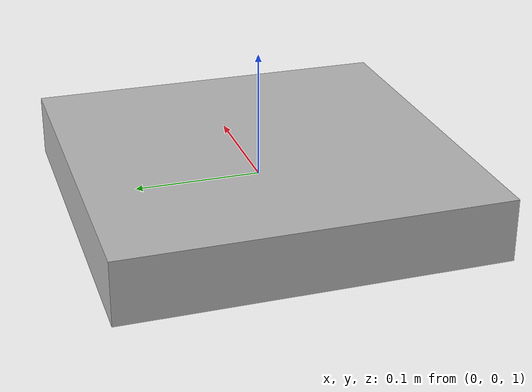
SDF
<?xml version="1.0" ?>
<sdf version="1.6">
	<model name="custom_quad">
		<static>false</static>

		<link name="base_link">
			<pose>0 0 1 0 0 0</pose>

			<inertial>
				<mass>1.0</mass>
				<inertia>
				<ixx>0.01</ixx>
				<iyy>0.01</iyy>
				<izz>0.02</izz>
				<ixy>0</ixy>
				<ixz>0</ixz>
				<iyz>0</iyz>
				</inertia>
			</inertial>

	<collision name="collision">
		<geometry>
			<box>
				<size>0.3 0.3 0.05</size>
			</box>
		</geometry>
	</collision>

	<visual name="visual">
		<geometry>
			<box>
				<size>0.3 0.3 0.05</size>
			</box>
		</geometry>
	</visual>
		<sensor name="imu_sensor" type="imu">
			<always_on>true</always_on>
			<update_rate>200</update_rate>

			<plugin name="imu_ros" filename="libgazebo_ros_imu_sensor.so">
				<ros>
					<namespace>/custom_quad</namespace>
				</ros>
				<topicName>imu</topicName>
				<frameName>base_link</frameName>
			</plugin>
		</sensor>
	</link>
	</model>
</sdf>
